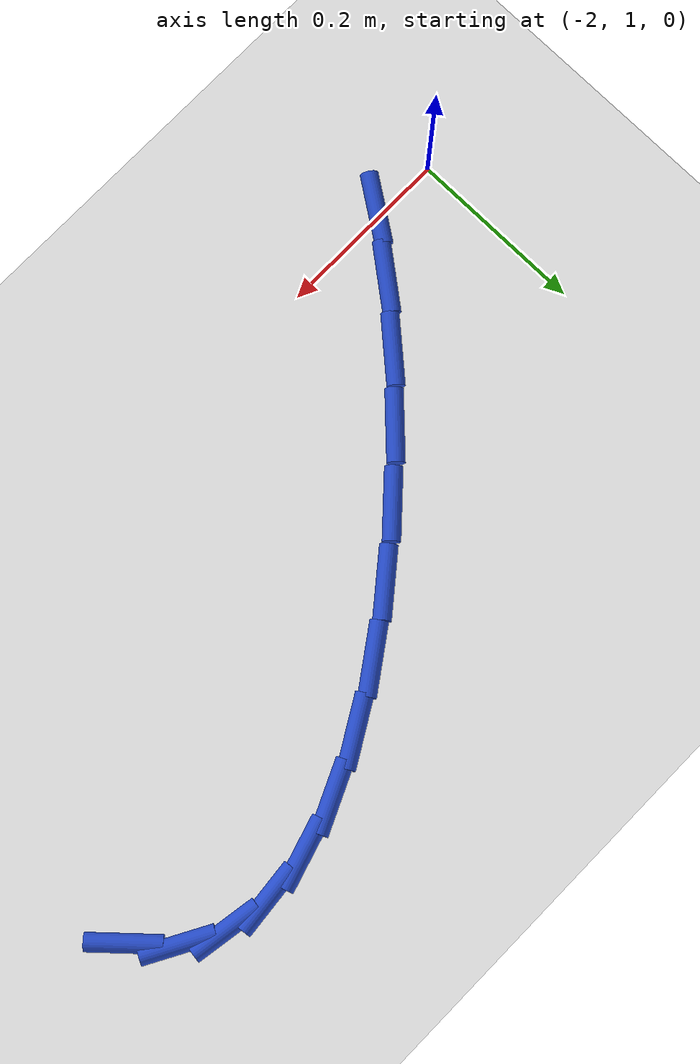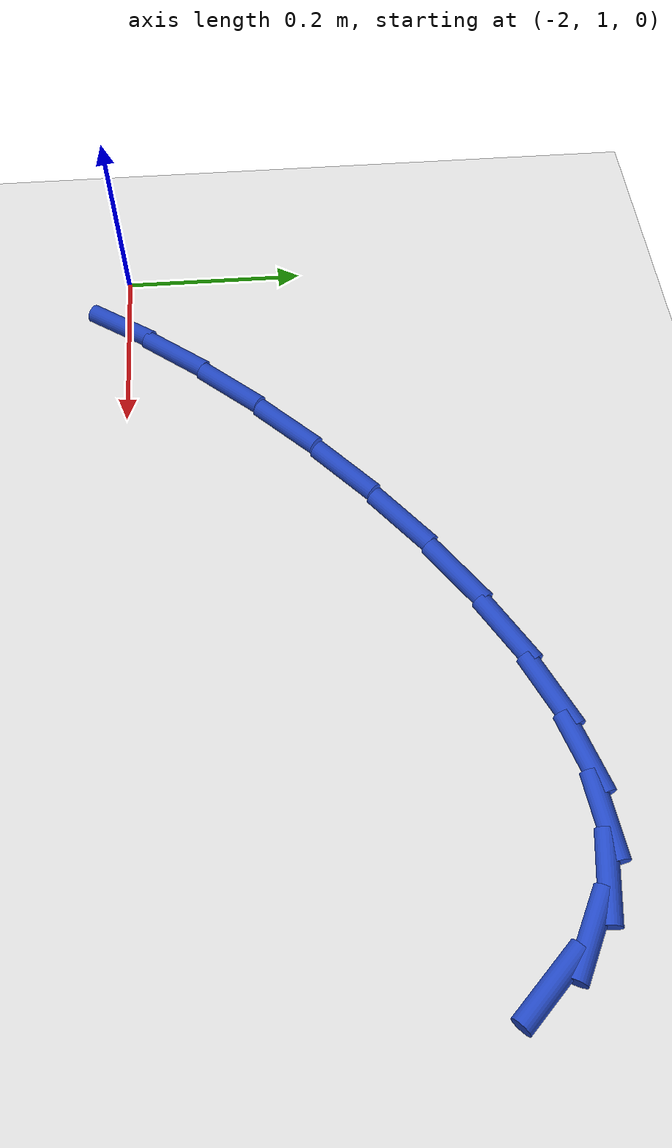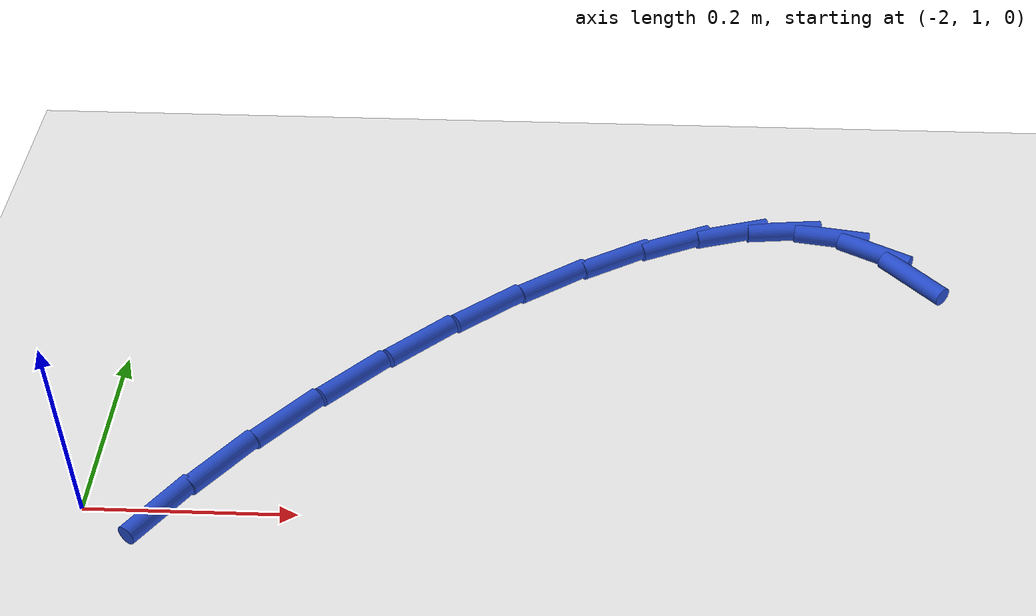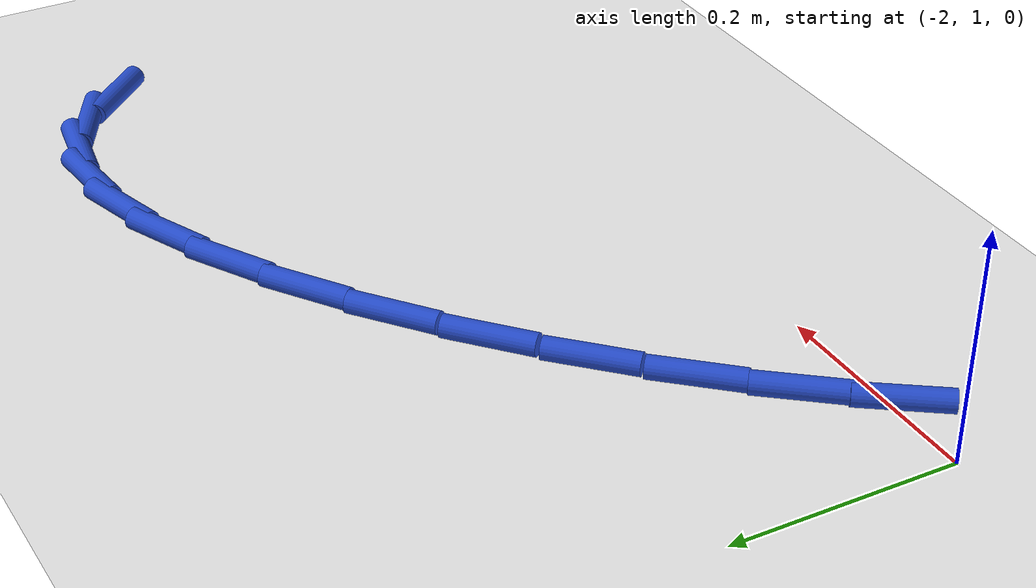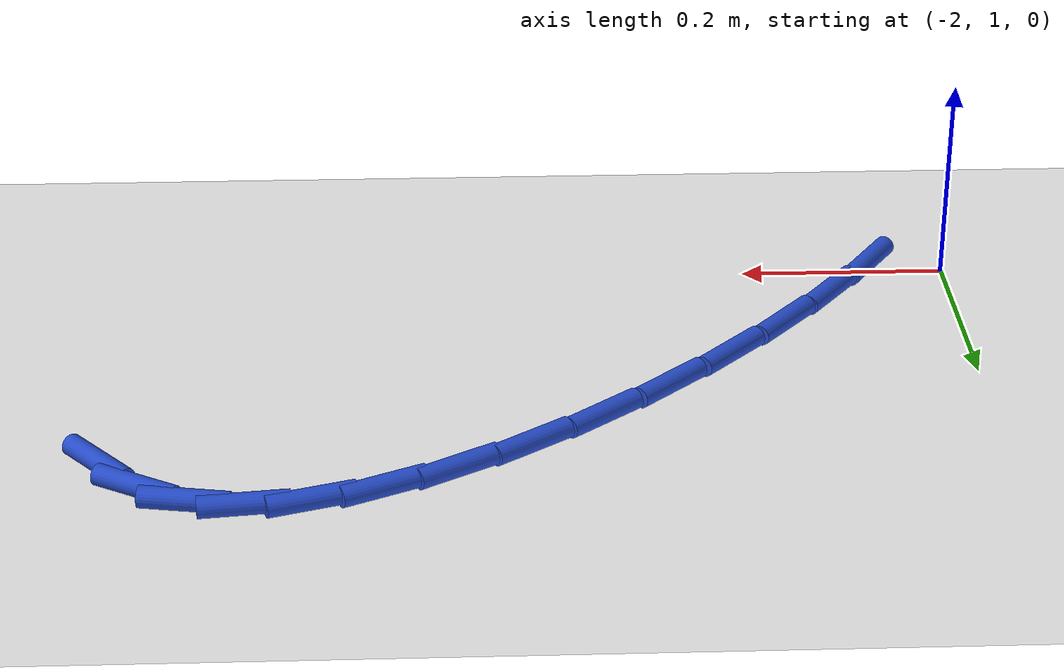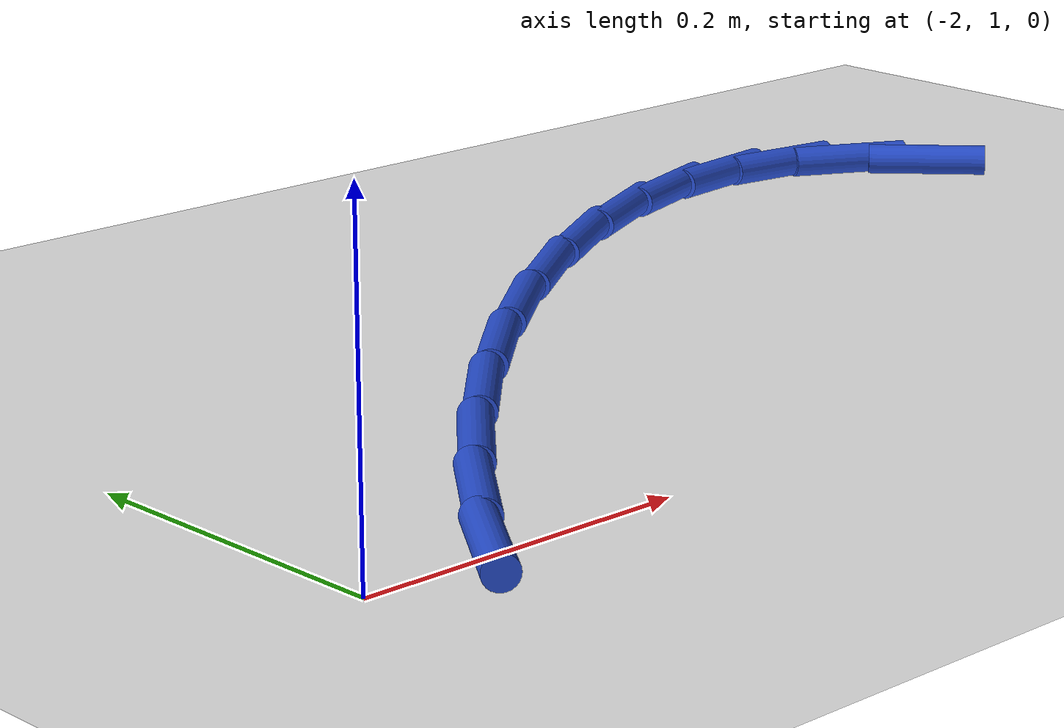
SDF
<sdf version="1.6">
 <world name="default">
  <model name="ground_plane">
   <static>1</static>
   <link name="link">
    <collision name="collision">
     <geometry><plane><normal>0 0 1</normal><size>100 100</size></plane></geometry>
     <surface><friction><ode><mu>100</mu><mu2>50</mu2></ode></friction></surface>
    </collision>
    <visual name="visual">
     <cast_shadows>0</cast_shadows>
     <geometry><plane><normal>0 0 1</normal><size>100 100</size></plane></geometry>
     <material>
      <script><uri>file://media/materials/scripts/gazebo.material</uri><name>Gazebo/WhiteGlow</name></script>
     </material>
    </visual>
   </link>
  </model>
  <model name="line">
   <link name="link_29">
    <pose>-1.1991592939181832 1.3468732795207419 0.01 0 1.57 -0.8285100196873268</pose>
    <collision name="collision">
     <geometry><cylinder><radius>0.01</radius><length>0.08</length></cylinder></geometry>
    </collision>
    <visual name="visual">
     <material>
      <script><name>Gazebo/Blue</name><uri>file://media/materials/scripts/gazebo.material</uri></script>
     </material>
     <geometry><cylinder><radius>0.01</radius><length>0.08</length></cylinder></geometry>
    </visual>
   </link>
   <link name="link_30">
    <pose>-1.2356100596931285 1.3866106957252442 0.01 0 1.57 -0.5034792741876584</pose>
    <collision name="collision">
     <geometry><cylinder><radius>0.01</radius><length>0.08</length></cylinder></geometry>
    </collision>
    <visual name="visual">
     <material>
      <script><name>Gazebo/Blue</name><uri>file://media/materials/scripts/gazebo.material</uri></script>
     </material>
     <geometry><cylinder><radius>0.01</radius><length>0.08</length></cylinder></geometry>
    </visual>
   </link>
   <link name="link_31">
    <pose>-1.2793796054203497 1.4107202204306248 0.01 0 1.57 -0.16100247058253345</pose>
    <collision name="collision">
     <geometry><cylinder><radius>0.01</radius><length>0.08</length></cylinder></geometry>
    </collision>
    <visual name="visual">
     <material>
      <script><name>Gazebo/Blue</name><uri>file://media/materials/scripts/gazebo.material</uri></script>
     </material>
     <geometry><cylinder><radius>0.01</radius><length>0.08</length></cylinder></geometry>
    </visual>
   </link>
   <link name="link_32">
    <pose>-1.330325015437076 1.418994173063321 0.01 0 1.57 0.10405300641182401</pose>
    <collision name="collision">
     <geometry><cylinder><radius>0.01</radius><length>0.08</length></cylinder></geometry>
    </collision>
    <visual name="visual">
     <material>
      <script><name>Gazebo/Blue</name><uri>file://media/materials/scripts/gazebo.material</uri></script>
     </material>
     <geometry><cylinder><radius>0.01</radius><length>0.08</length></cylinder></geometry>
    </visual>
   </link>
   <link name="link_33">
    <pose>-1.3870541335797502 1.413069941714478 0.01 0 1.57 0.293342370539612</pose>
    <collision name="collision">
     <geometry><cylinder><radius>0.01</radius><length>0.08</length></cylinder></geometry>
    </collision>
    <visual name="visual">
     <material>
      <script><name>Gazebo/Blue</name><uri>file://media/materials/scripts/gazebo.material</uri></script>
     </material>
     <geometry><cylinder><radius>0.01</radius><length>0.08</length></cylinder></geometry>
    </visual>
   </link>
   <link name="link_34">
    <pose>-1.4481551125819425 1.3946139972954539 0.01 0 1.57 0.4292448370477582</pose>
    <collision name="collision">
     <geometry><cylinder><radius>0.01</radius><length>0.08</length></cylinder></geometry>
    </collision>
    <visual name="visual">
     <material>
      <script><name>Gazebo/Blue</name><uri>file://media/materials/scripts/gazebo.material</uri></script>
     </material>
     <geometry><cylinder><radius>0.01</radius><length>0.08</length></cylinder></geometry>
    </visual>
   </link>
   <link name="link_35">
    <pose>-1.5122161051772238 1.3652928107176048 0.01 0 1.57 0.5308895056035139</pose>
    <collision name="collision">
     <geometry><cylinder><radius>0.01</radius><length>0.08</length></cylinder></geometry>
    </collision>
    <visual name="visual">
     <material>
      <script><name>Gazebo/Blue</name><uri>file://media/materials/scripts/gazebo.material</uri></script>
     </material>
     <geometry><cylinder><radius>0.01</radius><length>0.08</length></cylinder></geometry>
    </visual>
   </link>
   <link name="link_36">
    <pose>-1.5778252640991637 1.326772852892288 0.01 0 1.57 0.6110364658558655</pose>
    <collision name="collision">
     <geometry><cylinder><radius>0.01</radius><length>0.08</length></cylinder></geometry>
    </collision>
    <visual name="visual">
     <material>
      <script><name>Gazebo/Blue</name><uri>file://media/materials/scripts/gazebo.material</uri></script>
     </material>
     <geometry><cylinder><radius>0.01</radius><length>0.08</length></cylinder></geometry>
    </visual>
   </link>
   <link name="link_37">
    <pose>-1.6435707420813332 1.2807205947308606 0.01 0 1.57 0.6779684168700795</pose>
    <collision name="collision">
     <geometry><cylinder><radius>0.01</radius><length>0.08</length></cylinder></geometry>
    </collision>
    <visual name="visual">
     <material>
      <script><name>Gazebo/Blue</name><uri>file://media/materials/scripts/gazebo.material</uri></script>
     </material>
     <geometry><cylinder><radius>0.01</radius><length>0.08</length></cylinder></geometry>
    </visual>
   </link>
   <link name="link_38">
    <pose>-1.7080406918573028 1.2288025071446798 0.01 0 1.57 0.737384818893371</pose>
    <collision name="collision">
     <geometry><cylinder><radius>0.01</radius><length>0.08</length></cylinder></geometry>
    </collision>
    <visual name="visual">
     <material>
      <script><name>Gazebo/Blue</name><uri>file://media/materials/scripts/gazebo.material</uri></script>
     </material>
     <geometry><cylinder><radius>0.01</radius><length>0.08</length></cylinder></geometry>
    </visual>
   </link>
   <link name="link_39">
    <pose>-1.7698232661606423 1.1726850610451025 0.01 0 1.57 0.7937101141957014</pose>
    <collision name="collision">
     <geometry><cylinder><radius>0.01</radius><length>0.08</length></cylinder></geometry>
    </collision>
    <visual name="visual">
     <material>
      <script><name>Gazebo/Blue</name><uri>file://media/materials/scripts/gazebo.material</uri></script>
     </material>
     <geometry><cylinder><radius>0.01</radius><length>0.08</length></cylinder></geometry>
    </visual>
   </link>
   <link name="link_40">
    <pose>-1.827506617724923 1.114034727343486 0.01 0 1.57 0.850807529480295</pose>
    <collision name="collision">
     <geometry><cylinder><radius>0.01</radius><length>0.08</length></cylinder></geometry>
    </collision>
    <visual name="visual">
     <material>
      <script><name>Gazebo/Blue</name><uri>file://media/materials/scripts/gazebo.material</uri></script>
     </material>
     <geometry><cylinder><radius>0.01</radius><length>0.08</length></cylinder></geometry>
    </visual>
   </link>
   <link name="link_41">
    <pose>-1.8798764690095175 1.0543232331912649 0.01 0 1.57 0.910080423498191</pose>
    <collision name="collision">
     <geometry><cylinder><radius>0.01</radius><length>0.08</length></cylinder></geometry>
    </collision>
    <visual name="visual">
     <material>
      <script><name>Gazebo/Blue</name><uri>file://media/materials/scripts/gazebo.material</uri></script>
     </material>
     <geometry><cylinder><radius>0.01</radius><length>0.08</length></cylinder></geometry>
    </visual>
   </link>
   <link name="link_42">
    <pose>-1.926786384575546 0.9939697376652212 0.01 0 1.57 0.9710424076739566</pose>
    <collision name="collision">
     <geometry><cylinder><radius>0.01</radius><length>0.08</length></cylinder></geometry>
    </collision>
    <visual name="visual">
     <material>
      <script><name>Gazebo/Blue</name><uri>file://media/materials/scripts/gazebo.material</uri></script>
     </material>
     <geometry><cylinder><radius>0.01</radius><length>0.08</length></cylinder></geometry>
    </visual>
   </link>
  </model>
 </world>
</sdf>
